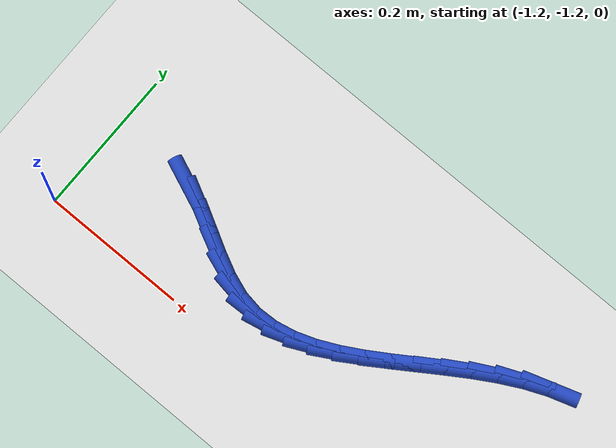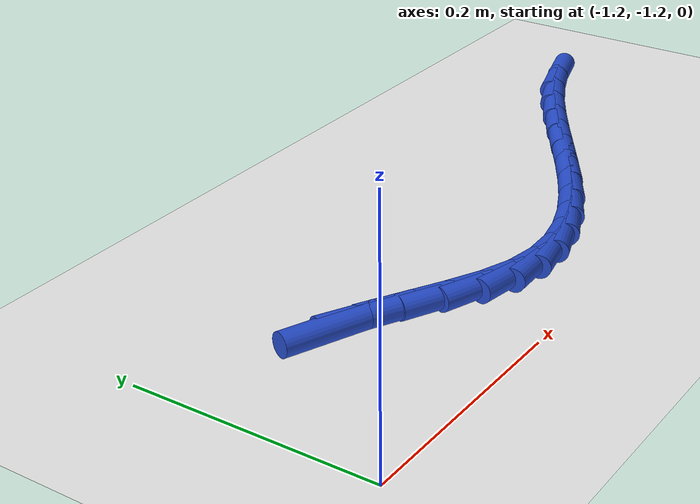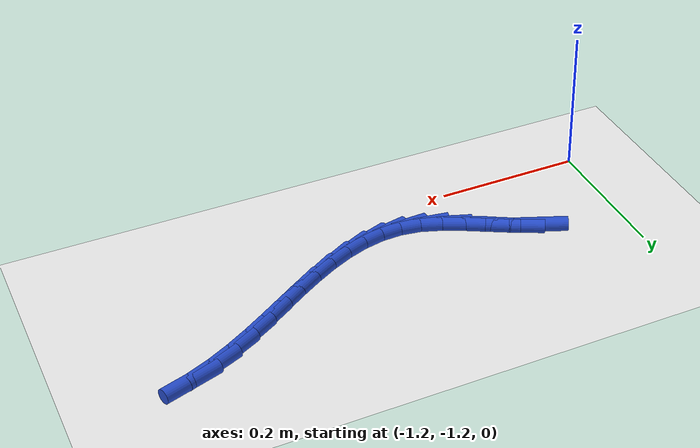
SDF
<sdf version="1.6">
 <world name="default">
  <model name="ground_plane">
   <static>1</static>
   <link name="link">
    <collision name="collision">
     <geometry><plane><normal>0 0 1</normal><size>100 100</size></plane></geometry>
     <surface><friction><ode><mu>100</mu><mu2>50</mu2></ode></friction></surface>
    </collision>
    <visual name="visual">
     <cast_shadows>0</cast_shadows>
     <geometry><plane><normal>0 0 1</normal><size>100 100</size></plane></geometry>
     <material>
      <script><uri>file://media/materials/scripts/gazebo.material</uri><name>Gazebo/WhiteGlow</name></script>
     </material>
    </visual>
   </link>
  </model>
  <model name="line">
   <link name="link_174">
    <pose>-1.0800515905364425 -1.0754709186553835 0.01 0 1.57 -0.3920406152535127</pose>
    <collision name="collision">
     <geometry><cylinder><radius>0.01</radius><length>0.08</length></cylinder></geometry>
    </collision>
    <visual name="visual">
     <material>
      <script><name>Gazebo/Blue</name><uri>file://media/materials/scripts/gazebo.material</uri></script>
     </material>
     <geometry><cylinder><radius>0.01</radius><length>0.08</length></cylinder></geometry>
    </visual>
   </link>
   <link name="link_175">
    <pose>-1.0511299578591384 -1.0874283458911693 0.01 0 1.57 -0.48299078793970107</pose>
    <collision name="collision">
     <geometry><cylinder><radius>0.01</radius><length>0.08</length></cylinder></geometry>
    </collision>
    <visual name="visual">
     <material>
      <script><name>Gazebo/Blue</name><uri>file://media/materials/scripts/gazebo.material</uri></script>
     </material>
     <geometry><cylinder><radius>0.01</radius><length>0.08</length></cylinder></geometry>
    </visual>
   </link>
   <link name="link_176">
    <pose>-1.0222283269714925 -1.102584886612427 0.01 0 1.57 -0.5055673198826149</pose>
    <collision name="collision">
     <geometry><cylinder><radius>0.01</radius><length>0.08</length></cylinder></geometry>
    </collision>
    <visual name="visual">
     <material>
      <script><name>Gazebo/Blue</name><uri>file://media/materials/scripts/gazebo.material</uri></script>
     </material>
     <geometry><cylinder><radius>0.01</radius><length>0.08</length></cylinder></geometry>
    </visual>
   </link>
   <link name="link_177">
    <pose>-0.9933912328921817 -1.1185477605300131 0.01 0 1.57 -0.4639932938393554</pose>
    <collision name="collision">
     <geometry><cylinder><radius>0.01</radius><length>0.08</length></cylinder></geometry>
    </collision>
    <visual name="visual">
     <material>
      <script><name>Gazebo/Blue</name><uri>file://media/materials/scripts/gazebo.material</uri></script>
     </material>
     <geometry><cylinder><radius>0.01</radius><length>0.08</length></cylinder></geometry>
    </visual>
   </link>
   <link name="link_178">
    <pose>-0.9646632106398841 -1.1329241873547835 0.01 0 1.57 -0.34897203274733807</pose>
    <collision name="collision">
     <geometry><cylinder><radius>0.01</radius><length>0.08</length></cylinder></geometry>
    </collision>
    <visual name="visual">
     <material>
      <script><name>Gazebo/Blue</name><uri>file://media/materials/scripts/gazebo.material</uri></script>
     </material>
     <geometry><cylinder><radius>0.01</radius><length>0.08</length></cylinder></geometry>
    </visual>
   </link>
   <link name="link_179">
    <pose>-0.9360887951851009 -1.1433213882258424 0.01 0 1.57 -0.15960944348715356</pose>
    <collision name="collision">
     <geometry><cylinder><radius>0.01</radius><length>0.08</length></cylinder></geometry>
    </collision>
    <visual name="visual">
     <material>
      <script><name>Gazebo/Blue</name><uri>file://media/materials/scripts/gazebo.material</uri></script>
     </material>
     <geometry><cylinder><radius>0.01</radius><length>0.08</length></cylinder></geometry>
    </visual>
   </link>
   <link name="link_180">
    <pose>-0.9076941136282467 -1.1478923287985192 0.01 0 1.57 0.03568880642272048</pose>
    <collision name="collision">
     <geometry><cylinder><radius>0.01</radius><length>0.08</length></cylinder></geometry>
    </collision>
    <visual name="visual">
     <material>
      <script><name>Gazebo/Blue</name><uri>file://media/materials/scripts/gazebo.material</uri></script>
     </material>
     <geometry><cylinder><radius>0.01</radius><length>0.08</length></cylinder></geometry>
    </visual>
   </link>
   <link name="link_181">
    <pose>-0.8794346837055795 -1.1468833550644582 0.01 0 1.57 0.20433040181805423</pose>
    <collision name="collision">
     <geometry><cylinder><radius>0.01</radius><length>0.08</length></cylinder></geometry>
    </collision>
    <visual name="visual">
     <material>
      <script><name>Gazebo/Blue</name><uri>file://media/materials/scripts/gazebo.material</uri></script>
     </material>
     <geometry><cylinder><radius>0.01</radius><length>0.08</length></cylinder></geometry>
    </visual>
   </link>
   <link name="link_182">
    <pose>-0.8512490955775974 -1.1410426707315244 0.01 0 1.57 0.3386840851996361</pose>
    <collision name="collision">
     <geometry><cylinder><radius>0.01</radius><length>0.08</length></cylinder></geometry>
    </collision>
    <visual name="visual">
     <material>
      <script><name>Gazebo/Blue</name><uri>file://media/materials/scripts/gazebo.material</uri></script>
     </material>
     <geometry><cylinder><radius>0.01</radius><length>0.08</length></cylinder></geometry>
    </visual>
   </link>
   <link name="link_183">
    <pose>-0.8230759394047993 -1.1311184795075844 0.01 0 1.57 0.4392184194726838</pose>
    <collision name="collision">
     <geometry><cylinder><radius>0.01</radius><length>0.08</length></cylinder></geometry>
    </collision>
    <visual name="visual">
     <material>
      <script><name>Gazebo/Blue</name><uri>file://media/materials/scripts/gazebo.material</uri></script>
     </material>
     <geometry><cylinder><radius>0.01</radius><length>0.08</length></cylinder></geometry>
    </visual>
   </link>
   <link name="link_184">
    <pose>-0.7948538053476829 -1.1178589851005023 0.01 0 1.57 0.5099610416605915</pose>
    <collision name="collision">
     <geometry><cylinder><radius>0.01</radius><length>0.08</length></cylinder></geometry>
    </collision>
    <visual name="visual">
     <material>
      <script><name>Gazebo/Blue</name><uri>file://media/materials/scripts/gazebo.material</uri></script>
     </material>
     <geometry><cylinder><radius>0.01</radius><length>0.08</length></cylinder></geometry>
    </visual>
   </link>
   <link name="link_185">
    <pose>-0.7665212835667482 -1.1020123912181459 0.01 0 1.57 0.5553203251509627</pose>
    <collision name="collision">
     <geometry><cylinder><radius>0.01</radius><length>0.08</length></cylinder></geometry>
    </collision>
    <visual name="visual">
     <material>
      <script><name>Gazebo/Blue</name><uri>file://media/materials/scripts/gazebo.material</uri></script>
     </material>
     <geometry><cylinder><radius>0.01</radius><length>0.08</length></cylinder></geometry>
    </visual>
   </link>
   <link name="link_186">
    <pose>-0.7380169642224931 -1.0843269015683796 0.01 0 1.57 0.578739273088703</pose>
    <collision name="collision">
     <geometry><cylinder><radius>0.01</radius><length>0.08</length></cylinder></geometry>
    </collision>
    <visual name="visual">
     <material>
      <script><name>Gazebo/Blue</name><uri>file://media/materials/scripts/gazebo.material</uri></script>
     </material>
     <geometry><cylinder><radius>0.01</radius><length>0.08</length></cylinder></geometry>
    </visual>
   </link>
   <link name="link_187">
    <pose>-0.709279437475416 -1.0655507198590688 0.01 0 1.57 0.5823515308600001</pose>
    <collision name="collision">
     <geometry><cylinder><radius>0.01</radius><length>0.08</length></cylinder></geometry>
    </collision>
    <visual name="visual">
     <material>
      <script><name>Gazebo/Blue</name><uri>file://media/materials/scripts/gazebo.material</uri></script>
     </material>
     <geometry><cylinder><radius>0.01</radius><length>0.08</length></cylinder></geometry>
    </visual>
   </link>
   <link name="link_188">
    <pose>-0.6802472934860146 -1.0464320497980788 0.01 0 1.57 0.5670050597620762</pose>
    <collision name="collision">
     <geometry><cylinder><radius>0.01</radius><length>0.08</length></cylinder></geometry>
    </collision>
    <visual name="visual">
     <material>
      <script><name>Gazebo/Blue</name><uri>file://media/materials/scripts/gazebo.material</uri></script>
     </material>
     <geometry><cylinder><radius>0.01</radius><length>0.08</length></cylinder></geometry>
    </visual>
   </link>
   <link name="link_189">
    <pose>-0.6508591224147896 -1.027719095093277 0.01 0 1.57 0.5323799888296473</pose>
    <collision name="collision">
     <geometry><cylinder><radius>0.01</radius><length>0.08</length></cylinder></geometry>
    </collision>
    <visual name="visual">
     <material>
      <script><name>Gazebo/Blue</name><uri>file://media/materials/scripts/gazebo.material</uri></script>
     </material>
     <geometry><cylinder><radius>0.01</radius><length>0.08</length></cylinder></geometry>
    </visual>
   </link>
   <link name="link_190">
    <pose>-0.6210535144222381 -1.0101600594525277 0.01 0 1.57 0.47715101749906264</pose>
    <collision name="collision">
     <geometry><cylinder><radius>0.01</radius><length>0.08</length></cylinder></geometry>
    </collision>
    <visual name="visual">
     <material>
      <script><name>Gazebo/Blue</name><uri>file://media/materials/scripts/gazebo.material</uri></script>
     </material>
     <geometry><cylinder><radius>0.01</radius><length>0.08</length></cylinder></geometry>
    </visual>
   </link>
   <link name="link_191">
    <pose>-0.5907690596688588 -0.9945031465836969 0.01 0 1.57 0.3992871745009788</pose>
    <collision name="collision">
     <geometry><cylinder><radius>0.01</radius><length>0.08</length></cylinder></geometry>
    </collision>
    <visual name="visual">
     <material>
      <script><name>Gazebo/Blue</name><uri>file://media/materials/scripts/gazebo.material</uri></script>
     </material>
     <geometry><cylinder><radius>0.01</radius><length>0.08</length></cylinder></geometry>
    </visual>
   </link>
   <link name="link_192">
    <pose>-0.5599443483151498 -0.9814965601946499 0.01 0 1.57 0.30781771506362043</pose>
    <collision name="collision">
     <geometry><cylinder><radius>0.01</radius><length>0.08</length></cylinder></geometry>
    </collision>
    <visual name="visual">
     <material>
      <script><name>Gazebo/Blue</name><uri>file://media/materials/scripts/gazebo.material</uri></script>
     </material>
     <geometry><cylinder><radius>0.01</radius><length>0.08</length></cylinder></geometry>
    </visual>
   </link>
  </model>
 </world>
</sdf>
